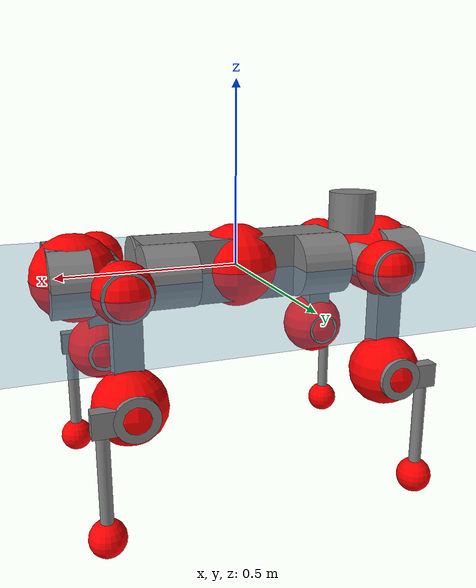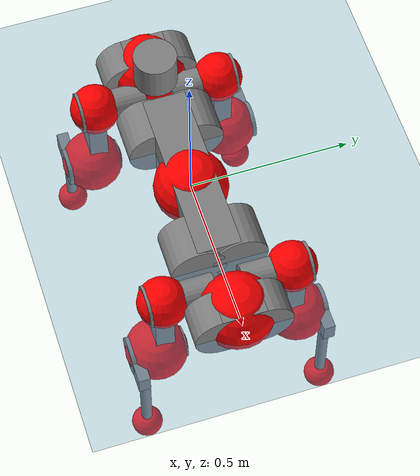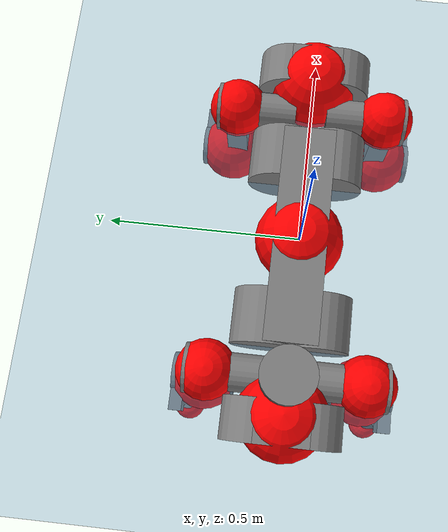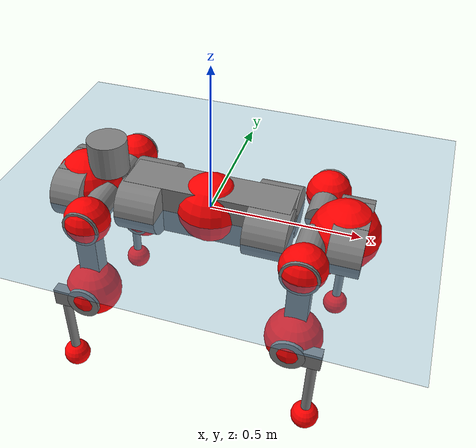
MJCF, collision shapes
<mujoco model="anymal_c">
  <compiler angle="radian" assetdir="assets" balanceinertia="true" inertiafromgeom="false"/>

  <option timestep="0.005" density="1.2" viscosity="2e-05"/>

  <size nkey="1"/>

  <visual>
    <quality shadowsize="8192"/>
    <map shadowclip="0.5"/>
  </visual>

  <default>
    <default class="/">
      <material specular="0" shininess="0.25"/>
      <geom contype="0" conaffinity="0" group="1" solref="-1000 -80"/>
      <site size="0.01 0.005 0.005" group="5"/>
      <general forcelimited="true" forcerange="-80 80" biastype="affine" gainprm="80" biasprm="0 -80 -2"/>
      <default class="anymal_c">
        <joint armature="0.01" damping="0.01" frictionloss="0.1"/>
        <default class="visual">
          <geom type="mesh" group="2"/>
          <default class="visual_zflip"/>
        </default>
        <default class="collision">
          <geom type="cylinder" group="3"/>
          <default class="foot">
            <geom size="0.03 0 0" type="sphere" condim="6" priority="1" friction="0.8 0.02 0.01" solimp="0.015 1 0.03"/>
          </default>
        </default>
      </default>
      <default class="reward_collision_sphere">
        <geom group="5" rgba="1 0 0 1"/>
      </default>
    </default>
  </default>

  <asset>
    <texture type="skybox" colorspace="auto" name="//unnamed_texture_0" builtin="gradient" rgb1="0.95 0.95 0.95" rgb2="0.95 0.95 0.95" width="100" height="600"/>
    <texture type="2d" colorspace="auto" name="texplane" builtin="checker" rgb1="0.345 0.575 0.748" rgb2="0.345 0.575 0.748" markrgb="1 1 1" width="512" height="512"/>
    <texture type="2d" colorspace="linear" name="base" file="base.png"/>
    <texture type="2d" colorspace="linear" name="top_shell" file="top_shell.png"/>
    <texture type="2d" colorspace="linear" name="bottom_shell" file="bottom_shell.png"/>
    <texture type="2d" colorspace="linear" name="remote" file="remote.png"/>
    <texture type="2d" colorspace="linear" name="hatch" file="hatch.png"/>
    <texture type="2d" colorspace="linear" name="handle" file="handle.png"/>
    <texture type="2d" colorspace="linear" name="face" file="face.png"/>
    <texture type="2d" colorspace="linear" name="battery" file="battery.png"/>
    <texture type="2d" colorspace="linear" name="lidar_cage" file="lidar_cage.png"/>
    <texture type="2d" colorspace="linear" name="depth_camera" file="depth_camera.png"/>
    <texture type="2d" colorspace="linear" name="wide_angle_camera" file="wide_angle_camera.png"/>
    <texture type="2d" colorspace="linear" name="lidar" file="lidar.png"/>
    <texture type="2d" colorspace="linear" name="drive" file="drive.png"/>
    <texture type="2d" colorspace="linear" name="hip_l" file="hip_l.png"/>
    <texture type="2d" colorspace="linear" name="shank_l" file="shank_l.png"/>
    <texture type="2d" colorspace="linear" name="foot" file="foot.png"/>
    <texture type="2d" colorspace="linear" name="thigh" file="thigh.png"/>
    <texture type="2d" colorspace="linear" name="shank_r" file="shank_r.png"/>
    <texture type="2d" colorspace="linear" name="hip_r" file="hip_r.png"/>
    <material name="MatPlane" class="/" texture="texplane" texuniform="true" texrepeat="2 2" specular="0.9" shininess="0.5"/>
    <material name="black_plastic" class="/" rgba="0.007 0.007 0.007 1"/>
    <material name="green" class="/" rgba="0.052 0.178 0.033 1"/>
    <material name="red" class="/" rgba="0.178 0.006 0.005 1"/>
    <material name="yellow" class="/" rgba="0.178 0.119 0.006 1"/>
    <material name="lwl" class="/" rgba="0.8 0.8 0.8 1"/>
    <material name="base" class="/" texture="base"/>
    <material name="top_shell" class="/" texture="top_shell"/>
    <material name="bottom_shell" class="/" texture="bottom_shell"/>
    <material name="hip_l" class="/" texture="hip_l"/>
    <material name="thigh" class="/" texture="thigh"/>
    <material name="shank_l" class="/" texture="shank_l"/>
    <material name="foot" class="/" texture="foot"/>
    <material name="hip_r" class="/" texture="hip_r"/>
    <material name="shank" class="/" texture="shank_r"/>
    <material name="hatch" class="/" texture="hatch"/>
    <material name="remote" class="/" texture="remote"/>
    <material name="handle" class="/" texture="handle"/>
    <material name="face" class="/" texture="face"/>
    <material name="depth_camera" class="/" texture="depth_camera"/>
    <material name="wide_angle_camera" class="/" texture="wide_angle_camera"/>
    <material name="battery" class="/" texture="battery"/>
    <material name="lidar_cage" class="/" texture="lidar_cage"/>
    <material name="lidar" class="/" texture="lidar"/>
    <material name="drive" class="/" texture="drive"/>
    <mesh name="base_0" class="/" file="base_0.obj"/>
    <mesh name="base_1" class="/" file="base_1.obj"/>
    <mesh name="base_2" class="/" file="base_2.obj"/>
    <mesh name="base_3" class="/" file="base_3.obj"/>
    <mesh name="base_4" class="/" file="base_4.obj"/>
    <mesh name="base_5" class="/" file="base_5.obj"/>
    <mesh name="top_shell" class="/" file="top_shell.obj"/>
    <mesh name="bottom_shell" class="/" file="bottom_shell.obj"/>
    <mesh name="remote" class="/" file="remote.obj"/>
    <mesh name="handle" class="/" file="handle.obj"/>
    <mesh name="face" class="/" file="face.obj"/>
    <mesh name="wide_angle_camera" class="/" file="wide_angle_camera.obj"/>
    <mesh name="depth_camera" class="/" file="depth_camera.obj"/>
    <mesh name="battery" class="/" file="battery.obj"/>
    <mesh name="lidar_cage" class="/" file="lidar_cage.obj"/>
    <mesh name="lidar" class="/" file="lidar.obj"/>
    <mesh name="drive" class="/" file="drive.obj"/>
    <mesh name="hip_l" class="/" file="hip_l.obj"/>
    <mesh name="thigh" class="/" file="thigh.obj"/>
    <mesh name="shank_l" class="/" file="shank_l.obj"/>
    <mesh name="foot" class="/" file="foot.obj"/>
    <mesh name="hip_r" class="/" file="hip_r.obj"/>
    <mesh name="hatch" class="/" file="hatch.obj"/>
    <mesh name="shank_r" class="/" file="shank_r.obj"/>
  </asset>

  <worldbody>
    <geom name="floor" class="/" size="100 100 0.125" type="plane" group="0" material="MatPlane"/>
    <light name="toplight_shadow" class="/" pos="0 0 5" dir="0.0990148 0.0990148 -0.990148" type="directional" ambient="0.04 0.04 0.04" diffuse="0.55 0.55 0.55" specular="0.12 0.12 0.12"/>
    <light name="toplight_fill" class="/" pos="0 0 5" dir="0.0990148 0.0990148 -0.990148" type="directional" castshadow="false" ambient="0.04 0.04 0.04" diffuse="0.3 0.3 0.3" specular="0.08 0.08 0.08"/>
    <body name="trunk" childclass="anymal_c" pos="0.000125226 0.000728394 -0.000301353" quat="1 -8.88695e-06 3.903e-06 -1.56649e-05">
      <inertial pos="0.00279137 0.000449696 0.0479854" quat="0.502856 0.49778 0.500628 0.498721" mass="17.5473" diaginertia="0.63102 0.409571 0.203918"/>
      <joint name="//unnamed_joint_0" type="free" armature="0" damping="0" frictionloss="0"/>
      <geom name="//unnamed_geom_1" class="visual" material="green" mesh="base_0"/>
      <geom name="//unnamed_geom_2" class="visual" material="yellow" mesh="base_1"/>
      <geom name="//unnamed_geom_3" class="visual" material="red" mesh="base_2"/>
      <geom name="//unnamed_geom_4" class="visual" material="black_plastic" mesh="base_3"/>
      <geom name="//unnamed_geom_5" class="visual" material="lwl" mesh="base_4"/>
      <geom name="//unnamed_geom_6" class="visual" material="base" mesh="base_5"/>
      <geom name="trunk_1" class="collision" size="0.280459 0.0676971 0.0870391" type="box"/>
      <geom name="trunk_2" class="collision" size="0.0870391 0.0701149" pos="0.216535 0.0643062 0" quat="0.707107 0 0.707107 0"/>
      <geom name="trunk_3" class="collision" size="0.0870391 0.0701149" pos="-0.216535 0.0643062 0" quat="0.707107 0 0.707107 0"/>
      <geom name="trunk_4" class="collision" size="0.0870391 0.0701149" pos="0.216535 -0.0643062 0" quat="0.707107 0 0.707107 0"/>
      <geom name="trunk_5" class="collision" size="0.0870391 0.0701149" pos="-0.216535 -0.0643062 0" quat="0.707107 0 0.707107 0"/>
      <geom name="//unnamed_geom_12" class="visual" material="top_shell" mesh="top_shell"/>
      <geom name="//unnamed_geom_13" class="visual" material="bottom_shell" mesh="bottom_shell"/>
      <geom name="//unnamed_geom_14" class="visual" material="remote" mesh="remote"/>
      <geom name="//unnamed_geom_15" class="visual" material="handle" mesh="handle"/>
      <geom name="//unnamed_geom_16" class="visual" pos="0.412661 0 0" quat="1 0 0 0" material="face" mesh="face"/>
      <geom name="trunk_6" class="collision" size="0.0531906 0.0676971 0.0870391" pos="0.467417 0 0" type="box"/>
      <geom name="//unnamed_geom_18" class="collision" size="0.0870391 0.0531906" pos="0.467417 0.0643062 0" quat="0.707107 0 0.707107 0"/>
      <geom name="//unnamed_geom_19" class="collision" size="0.0870391 0.0531906" pos="0.467417 -0.0643062 0" quat="0.707107 0 0.707107 0"/>
      <geom name="//unnamed_geom_20" class="visual" pos="0.459601 0 -0.0287584" quat="0.965926 0 0.258819 0" material="depth_camera" mesh="depth_camera"/>
      <geom name="//unnamed_geom_21" class="visual" pos="0.510723 0 0.0147766" material="wide_angle_camera" mesh="wide_angle_camera"/>
      <geom name="//unnamed_geom_22" class="visual_zflip" pos="-0.412661 0 0" quat="0 0 0 1" material="face" mesh="face"/>
      <geom name="trunk_7" class="collision" size="0.0531906 0.0676971 0.0870391" pos="-0.467417 0 0" quat="0 0 0 1" type="box"/>
      <geom name="//unnamed_geom_24" class="collision" size="0.0870391 0.0531906" pos="-0.467417 -0.0643062 0" quat="0 -0.707107 0 0.707107"/>
      <geom name="//unnamed_geom_25" class="collision" size="0.0870391 0.0531906" pos="-0.467417 0.0643062 0" quat="0 -0.707107 0 0.707107"/>
      <geom name="//unnamed_geom_26" class="visual" pos="-0.459601 0 -0.0287584" quat="0 -0.258819 0 0.965926" material="depth_camera" mesh="depth_camera"/>
      <geom name="//unnamed_geom_27" class="visual_zflip" pos="-0.510723 0 0.0147766" quat="0 0 0 1" material="wide_angle_camera" mesh="wide_angle_camera"/>
      <geom name="//unnamed_geom_28" class="visual" material="battery" mesh="battery"/>
      <geom name="//unnamed_geom_29" class="visual" pos="0 0.0692312 0.0287392" quat="0.683013 -0.183013 0.183013 0.683013" material="depth_camera" mesh="depth_camera"/>
      <geom name="//unnamed_geom_30" class="visual" pos="0 -0.0692312 0.0287392" quat="0.683013 0.183013 0.183013 -0.683013" material="depth_camera" mesh="depth_camera"/>
      <geom name="//unnamed_geom_31" class="visual" pos="-0.362385 0 0.0725506" quat="1 0 0 0" material="lidar_cage" mesh="lidar_cage"/>
      <geom name="trunk_8" class="collision" size="0.0676971 0.0580261" pos="-0.362385 0 0.131776"/>
      <geom name="//unnamed_geom_33" class="visual" pos="-0.362385 -3.0213e-05 0.140363" quat="0.707107 0 0 -0.707107" material="lidar" mesh="lidar"/>
      <geom name="//unnamed_geom_34" class="visual" pos="0.298569 0.0955649 -1.18031e-09" quat="0.258819 0.965926 0 0" material="drive" mesh="drive"/>
      <geom name="//unnamed_geom_35" class="visual" pos="0.298569 -0.0955649 1.18031e-09" quat="0.258819 -0.965926 0 0" material="drive" mesh="drive"/>
      <geom name="//unnamed_geom_36" class="visual" pos="-0.298569 0.0955649 1.18031e-09" quat="0 0 0.965926 -0.258819" material="drive" mesh="drive"/>
      <geom name="//unnamed_geom_37" class="visual" pos="-0.298569 -0.0955649 -1.18031e-09" quat="0 0 -0.965926 -0.258819" material="drive" mesh="drive"/>
      <geom name="//unnamed_geom_38" class="visual" pos="0.115485 0 0.072057" quat="1 0 0 0" material="hatch" mesh="hatch"/>
      <geom name="//unnamed_geom_39" class="reward_collision_sphere" size="0.116052"/>
      <geom name="//unnamed_geom_40" class="reward_collision_sphere" size="0.116052" pos="0.448003 0 0"/>
      <geom name="//unnamed_geom_41" class="reward_collision_sphere" size="0.116052" pos="-0.448003 0 0"/>
      <site name="imu" pos="0.243756 0.0038275 0.0493399" size="0.00967102"/>
      <camera name="track" pos="0 -1.83732 0" quat="0.707107 0.707107 0 0" mode="trackcom"/>
      <camera name="ego_camera" pos="0.448003 0 -0.0394833" quat="-0.5 -0.5 0.5 0.5"/>
      <body name="LF_HIP" pos="0.298056 0.0965021 -0.000379426" quat="0.258573 0.965992 4.37778e-06 -3.33385e-05">
        <inertial pos="0.0564595 -0.013792 -0.00851724" quat="-0.128183 0.708927 -0.135242 0.680221" mass="2.53251" diaginertia="0.00572541 0.00325945 0.00309621"/>
        <joint name="LF_HAA" pos="0 0 0" axis="0.999999 -0.00143925 0.000899429" range="-0.703819 0.479038" armature="0.00979225" damping="0.0112943" frictionloss="0.0924227"/>
        <geom name="//unnamed_geom_42" class="visual" pos="0 -6.9432e-05 1.14042e-05" quat="0.258819 -0.965926 0 0" material="hip_l" mesh="hip_l"/>
        <geom name="//unnamed_geom_43" class="visual" pos="0.0596342 -0.0712713 -0.0416546" quat="0.183013 -0.683013 0.683013 0.183013" material="drive" mesh="drive"/>
        <geom name="//unnamed_geom_44" class="collision" size="0.0483551 0.0676971" pos="0.0596342 -0.010987 -0.00681581" quat="-0.353553 -0.612372 0.612372 -0.353553"/>
        <body name="LF_THIGH" pos="0.0599817 -0.0665445 -0.0412409" quat="0.182884 -0.683214 0.68297 0.182551">
          <inertial pos="0.0300422 -0.000724293 -0.242311" quat="0.993001 -0.00631027 -0.0818232 0.0849349" mass="2.77681" diaginertia="0.0294626 0.0195271 0.0039008"/>
          <joint name="LF_HFE" pos="0 0 0" axis="0.999999 0.000786334 0.000704601" stiffness="0.00451017" range="-3.15016 3.13813" armature="0.00938633" damping="0.0118748" frictionloss="0.0969037"/>
          <geom name="//unnamed_geom_45" class="visual" pos="0.00153006 2.41102e-06 0" quat="0.707107 0 0 -0.707107" material="thigh" mesh="thigh"/>
          <geom name="//unnamed_geom_46" class="collision" size="0.0628616 0.0386841" pos="0.0398225 0 0" quat="0.5 0.5 -0.5 -0.5"/>
          <geom name="//unnamed_geom_47" class="collision" size="0.0362663 0.029013 0.136665" pos="0.0298669 0 -0.139489" quat="0.707107 0 0 -0.707107" type="box"/>
          <geom name="//unnamed_geom_48" class="visual" pos="0.0998549 0 -0.281319" quat="1 0 0 0" material="drive" mesh="drive"/>
          <geom name="//unnamed_geom_49" class="collision" size="0.0483551 0.0676971" pos="0.0301655 0 -0.281319" quat="0.707107 0 0.707107 0"/>
          <geom name="//unnamed_geom_50" class="reward_collision_sphere" size="0.0773681" pos="0.0248891 0 0"/>
          <body name="LF_SHANK" pos="0.0994889 -0.000510337 -0.281347" quat="1 -0.00014418 -2.05727e-05 -0.000284172">
            <inertial pos="0.00452677 -0.0562561 -0.0801009" quat="0.992931 -0.116025 -0.00121952 -0.0249876" mass="0.532051" diaginertia="0.010017 0.00604763 0.00104289"/>
            <joint name="LF_KFE" pos="0 0 0" axis="1 0.000370543 0.000562302" stiffness="0.000342961" range="-3.14829 3.13818" armature="0.0101093" damping="0.0100692" frictionloss="0.0962507"/>
            <geom name="//unnamed_geom_51" class="visual" pos="0.000498919 0.00266026 0" quat="0.707107 0 0 -0.707107" material="shank_l" mesh="shank_l"/>
            <geom name="LF_kfe_act" class="collision" size="0.0580261 0.019342" pos="0.0199112 0 0" quat="0.5 0.5 -0.5 -0.5"/>
            <geom name="//unnamed_geom_53" class="collision" size="0.0556074 0.0326397 0.0183749" pos="0.0199112 -0.052822 0" quat="0.5 0.5 -0.5 -0.5" type="box"/>
            <geom name="//unnamed_geom_54" class="visual" pos="0.012992 -0.0799388 -0.333604" quat="0.382683 0 0 -0.92388" material="foot" mesh="foot"/>
            <geom name="LF_calf" class="collision" size="0.0169243 0.136605" pos="0.0129921 -0.0807961 -0.166802" quat="0.707107 0 0 -0.707107"/>
            <geom name="LF_foot" class="foot" size="0.0297441" pos="0.0129921 -0.0807961 -0.311395" quat="0.707107 0 0 -0.707107"/>
            <geom name="//unnamed_geom_57" class="reward_collision_sphere" size="0.0967102" pos="-0.0497781 0 0"/>
            <geom name="//unnamed_geom_58" class="reward_collision_sphere" size="0.0483551" pos="0.0129921 -0.0807961 -0.311395"/>
            <site name="LF_foot" class="foot" pos="0.0129921 -0.0807961 -0.311395" quat="0.707107 0 0 -0.707107" size="0.00967102"/>
          </body>
        </body>
      </body>
      <body name="RF_HIP" pos="0.298952 -0.0953986 0.00109564" quat="0.258828 -0.965923 -4.73406e-05 6.93353e-06">
        <inertial pos="0.0563767 0.0149537 -0.00777245" quat="0.135009 0.679505 0.128627 0.709578" mass="2.51532" diaginertia="0.00568277 0.00317596 0.00304649"/>
        <joint name="RF_HAA" pos="0 0 0" axis="0.999996 -0.00232006 -0.001595" range="-0.49366 0.718221" armature="0.00987395" damping="0.0115625" frictionloss="0.0975178"/>
        <geom name="//unnamed_geom_59" class="visual" pos="0 6.94315e-05 1.14041e-05" quat="0.258819 0.965926 0 0" material="hip_r" mesh="hip_r"/>
        <geom name="//unnamed_geom_60" class="visual" pos="0.0596342 0.0712713 -0.0416546" quat="0.183013 0.683013 0.683013 -0.183013" material="drive" mesh="drive"/>
        <geom name="//unnamed_geom_61" class="collision" size="0.0483551 0.0676971" pos="0.0596342 0.010987 -0.00681581" quat="-0.353553 0.612372 0.612372 0.353553"/>
        <body name="RF_THIGH" pos="0.0600522 0.0675006 -0.0428846" quat="0.183305 0.682988 0.683007 -0.182834">
          <inertial pos="0.0312504 -0.000649288 -0.242145" quat="0.99321 -0.00446905 -0.0768363 0.087233" mass="2.72911" diaginertia="0.0292741 0.0194218 0.00389548"/>
          <joint name="RF_HFE" pos="0 0 0" axis="0.999996 -0.0027182 -0.000367787" stiffness="0.00627925" range="-3.14483 3.13963" armature="0.00956227" damping="0.0121831" frictionloss="0.0965979"/>
          <geom name="//unnamed_geom_62" class="visual" pos="0.00153006 2.41102e-06 0" quat="0.707107 0 0 -0.707107" material="thigh" mesh="thigh"/>
          <geom name="//unnamed_geom_63" class="collision" size="0.0628616 0.0386841" pos="0.0398225 0 0" quat="0.5 0.5 0.5 0.5"/>
          <geom name="//unnamed_geom_64" class="collision" size="0.0362663 0.029013 0.136665" pos="0.0298669 0 -0.139489" quat="0.707107 0 0 0.707107" type="box"/>
          <geom name="//unnamed_geom_65" class="visual" pos="0.0998549 0 -0.281319" quat="1 0 0 0" material="drive" mesh="drive"/>
          <geom name="//unnamed_geom_66" class="collision" size="0.0483551 0.0676971" pos="0.0301655 0 -0.281319" quat="0.707107 0 0.707107 0"/>
          <geom name="//unnamed_geom_67" class="reward_collision_sphere" size="0.0773681" pos="0.0248891 0 0"/>
          <body name="RF_SHANK" pos="0.0994985 0.000139108 -0.280222" quat="1 6.5046e-05 -1.9071e-05 -0.000164197">
            <inertial pos="0.00551855 0.0562899 -0.0803316" quat="0.993255 0.112587 -0.00259639 0.0276148" mass="0.529865" diaginertia="0.00999192 0.00604744 0.00105228"/>
            <joint name="RF_KFE" pos="0 0 0" axis="0.999989 -0.0046398 0.000424275" range="-3.12643 3.13401" armature="0.00970594" damping="0.00791881" frictionloss="0.0987469"/>
            <geom name="//unnamed_geom_68" class="visual" pos="0.000498916 -0.00266026 0" quat="0.707107 0 0 0.707107" material="shank" mesh="shank_r"/>
            <geom name="RF_kfe_act" class="collision" size="0.0580261 0.019342" pos="0.0199112 0 0" quat="0.5 0.5 0.5 0.5"/>
            <geom name="//unnamed_geom_70" class="collision" size="0.0556074 0.0326397 0.0183749" pos="0.0199112 0.052822 0" quat="0.5 0.5 0.5 0.5" type="box"/>
            <geom name="//unnamed_geom_71" class="visual" pos="0.0129922 0.0799388 -0.333604" quat="0.382683 0 0 0.92388" material="foot" mesh="foot"/>
            <geom name="RF_calf" class="collision" size="0.0169243 0.136605" pos="0.0129921 0.0807961 -0.166802" quat="0.707107 0 0 0.707107"/>
            <geom name="RF_foot" class="foot" size="0.0303647" pos="0.0129921 0.0807961 -0.311395" quat="0.707107 0 0 0.707107"/>
            <geom name="//unnamed_geom_74" class="reward_collision_sphere" size="0.0967102" pos="-0.0497781 0 0"/>
            <geom name="//unnamed_geom_75" class="reward_collision_sphere" size="0.0483551" pos="0.0129921 0.0807961 -0.311395"/>
            <site name="RF_foot" class="foot" pos="0.0129921 0.0807961 -0.311395" quat="0.707107 0 0 0.707107" size="0.00967102"/>
          </body>
        </body>
      </body>
      <body name="LH_HIP" pos="-0.297629 0.0961641 5.73219e-05" quat="-1.43836e-05 2.16719e-05 0.965926 -0.258817">
        <inertial pos="0.0565096 0.0143712 -0.00891565" quat="0.13607 0.680062 0.126634 0.7092" mass="2.5217" diaginertia="0.00572127 0.00321271 0.0030813"/>
        <joint name="LH_HAA" pos="0 0 0" axis="1 -0.000593114 0.00077828" range="-0.485379 0.724092" armature="0.00965451" damping="0.00717493" frictionloss="0.0985636"/>
        <geom name="//unnamed_geom_76" class="visual" pos="0 6.94315e-05 1.14041e-05" quat="-0.258819 -0.965926 0 0" material="hip_r" mesh="hip_r"/>
        <geom name="//unnamed_geom_77" class="visual" pos="0.0596342 0.0712713 -0.0416546" quat="0.183013 0.683013 0.683013 -0.183013" material="drive" mesh="drive"/>
        <geom name="//unnamed_geom_78" class="collision" size="0.0483551 0.0676971" pos="0.0596342 0.010987 -0.00681581" quat="-0.353553 0.612372 0.612372 0.353553"/>
        <body name="LH_THIGH" pos="0.0599534 0.0669056 -0.0426029" quat="0.183333 0.68281 0.683123 -0.183035">
          <inertial pos="0.0306111 6.46301e-05 -0.242534" quat="0.992568 -0.00736206 -0.0838383 0.0878972" mass="2.80263" diaginertia="0.029426 0.0195201 0.00393803"/>
          <joint name="LH_HFE" pos="0 0 0" axis="0.999996 0.00241698 0.001742" range="-3.12836 3.12274" armature="0.00967891" damping="0.00967555" frictionloss="0.0981337"/>
          <geom name="//unnamed_geom_79" class="visual" pos="0.00153006 2.41102e-06 0" quat="0.707107 0 0 -0.707107" material="thigh" mesh="thigh"/>
          <geom name="//unnamed_geom_80" class="collision" size="0.0628616 0.0386841" pos="0.0398225 0 0" quat="0.5 0.5 -0.5 -0.5"/>
          <geom name="//unnamed_geom_81" class="collision" size="0.0362663 0.029013 0.136665" pos="0.0298669 0 -0.139489" quat="0.707107 0 0 -0.707107" type="box"/>
          <geom name="//unnamed_geom_82" class="visual" pos="0.0998549 0 -0.281319" quat="1 0 0 0" material="drive" mesh="drive"/>
          <geom name="//unnamed_geom_83" class="collision" size="0.0483551 0.0676971" pos="0.0301655 0 -0.281319" quat="0.707107 0 0.707107 0"/>
          <geom name="//unnamed_geom_84" class="reward_collision_sphere" size="0.0773681" pos="0.0248891 0 0"/>
          <body name="LH_SHANK" pos="0.100904 -0.00170531 -0.28169" quat="1 -0.000165856 -0.000158001 0.000239572">
            <inertial pos="0.00575767 0.0562505 -0.0797721" quat="0.992981 0.115573 -0.00143881 0.0250957" mass="0.521067" diaginertia="0.00979469 0.0059937 0.00103793"/>
            <joint name="LH_KFE" pos="0 0 0" axis="0.999998 0.00188161 0.000324104" range="-3.13598 3.15532" armature="0.00974037" damping="0.011884" frictionloss="0.0958676"/>
            <geom name="//unnamed_geom_85" class="visual" pos="0.000498916 -0.00266026 0" quat="-0.707107 0 0 -0.707107" material="shank" mesh="shank_r"/>
            <geom name="LH_kfe_act" class="collision" size="0.0580261 0.019342" pos="0.0199112 0 0" quat="0.5 0.5 -0.5 -0.5"/>
            <geom name="//unnamed_geom_87" class="collision" size="0.0556074 0.0326397 0.0183749" pos="0.0199112 0.052822 0" quat="0.5 0.5 -0.5 -0.5" type="box"/>
            <geom name="//unnamed_geom_88" class="visual" pos="0.0129922 0.0799388 -0.333604" quat="-0.382683 0 0 -0.92388" material="foot" mesh="foot"/>
            <geom name="LH_calf" class="collision" size="0.0169243 0.136605" pos="0.0129921 0.0807961 -0.166802" quat="0.707107 0 0 -0.707107"/>
            <geom name="LH_foot" class="foot" size="0.0300476" pos="0.0129921 0.0807961 -0.311395" quat="0.707107 0 0 -0.707107"/>
            <geom name="//unnamed_geom_91" class="reward_collision_sphere" size="0.0967102" pos="-0.0497781 0 0"/>
            <geom name="//unnamed_geom_92" class="reward_collision_sphere" size="0.0483551" pos="0.0129921 0.0807961 -0.311395"/>
            <site name="LH_foot" class="foot" pos="0.0129921 0.0807961 -0.311395" quat="0.707107 0 0 -0.707107" size="0.00967102"/>
          </body>
        </body>
      </body>
      <body name="RH_HIP" pos="-0.297972 -0.0965433 0.000317327" quat="0.00011726 -0.000338614 -0.965957 -0.258704">
        <inertial pos="0.0568857 -0.0145964 -0.00749183" quat="-0.126842 0.709468 -0.133351 0.680282" mass="2.48976" diaginertia="0.00561698 0.00318831 0.00305358"/>
        <joint name="RH_HAA" pos="0 0 0" axis="0.999996 -0.00234968 0.00156407" stiffness="0.000815549" range="-0.72279 0.493612" armature="0.00967872" damping="0.00919208" frictionloss="0.0955672"/>
        <geom name="//unnamed_geom_93" class="visual" pos="0 -6.9432e-05 1.14042e-05" quat="-0.258819 0.965926 0 0" material="hip_l" mesh="hip_l"/>
        <geom name="//unnamed_geom_94" class="visual" pos="0.0596342 -0.0712713 -0.0416546" quat="-0.183013 0.683013 -0.683013 -0.183013" material="drive" mesh="drive"/>
        <geom name="//unnamed_geom_95" class="collision" size="0.0483551 0.0676971" pos="0.0596342 -0.010987 -0.00681581" quat="0.353553 0.612372 -0.612372 0.353553"/>
        <body name="RH_THIGH" pos="0.0593416 -0.0674646 -0.041909" quat="-0.182975 0.683022 -0.683008 -0.183031">
          <inertial pos="0.0309016 -2.52854e-05 -0.243189" quat="0.993155 -0.00734184 -0.0801314 0.0846677" mass="2.80459" diaginertia="0.0297755 0.0197878 0.00396027"/>
          <joint name="RH_HFE" pos="0 0 0" axis="1 0.000234869 -0.000143895" stiffness="0.00228163" range="-3.13342 3.12614" armature="0.0097653" damping="0.00733608" frictionloss="0.0981537"/>
          <geom name="//unnamed_geom_96" class="visual" pos="0.00153006 2.41102e-06 0" quat="0.707107 0 0 -0.707107" material="thigh" mesh="thigh"/>
          <geom name="//unnamed_geom_97" class="collision" size="0.0628616 0.0386841" pos="0.0398225 0 0" quat="0.5 0.5 0.5 0.5"/>
          <geom name="//unnamed_geom_98" class="collision" size="0.0362663 0.029013 0.136665" pos="0.0298669 0 -0.139489" quat="0.707107 0 0 0.707107" type="box"/>
          <geom name="//unnamed_geom_99" class="visual" pos="0.0998549 0 -0.281319" quat="1 0 0 0" material="drive" mesh="drive"/>
          <geom name="//unnamed_geom_100" class="collision" size="0.0483551 0.0676971" pos="0.0301655 0 -0.281319" quat="0.707107 0 0.707107 0"/>
          <geom name="//unnamed_geom_101" class="reward_collision_sphere" size="0.0773681" pos="0.0248891 0 0"/>
          <body name="RH_SHANK" pos="0.0983815 0.000724819 -0.281185" quat="1 4.39116e-05 -0.000285479 -1.55463e-05">
            <inertial pos="0.00630512 -0.0561095 -0.0800579" quat="0.992935 -0.115907 -0.00105756 -0.025396" mass="0.534294" diaginertia="0.00994114 0.00601996 0.0010552"/>
            <joint name="RH_KFE" pos="0 0 0" axis="0.999989 0.00441979 0.00122524" range="-3.11362 3.13645" armature="0.00970552" damping="0.00778946" frictionloss="0.0968843"/>
            <geom name="//unnamed_geom_102" class="visual" pos="0.000498919 0.00266026 0" quat="0.707107 0 0 -0.707107" material="shank_l" mesh="shank_l"/>
            <geom name="RH_kfe_act" class="collision" size="0.0580261 0.019342" pos="0.0199112 0 0" quat="0.5 0.5 0.5 0.5"/>
            <geom name="//unnamed_geom_104" class="collision" size="0.0556074 0.0326397 0.0183749" pos="0.0199112 -0.052822 0" quat="0.5 0.5 0.5 0.5" type="box"/>
            <geom name="//unnamed_geom_105" class="visual" pos="0.012992 -0.0799388 -0.333604" quat="0.382683 0 0 -0.92388" material="foot" mesh="foot"/>
            <geom name="RH_calf" class="collision" size="0.0169243 0.136605" pos="0.0129921 -0.0807961 -0.166802" quat="0.707107 0 0 0.707107"/>
            <geom name="RH_foot" class="foot" size="0.0282734" pos="0.0129921 -0.0807961 -0.311395" quat="0.707107 0 0 0.707107"/>
            <geom name="//unnamed_geom_108" class="reward_collision_sphere" size="0.0967102" pos="-0.0497781 0 0"/>
            <geom name="//unnamed_geom_109" class="reward_collision_sphere" size="0.0483551" pos="0.0129921 -0.0807961 -0.311395"/>
            <site name="RH_foot" class="foot" pos="0.0129921 -0.0807961 -0.311395" quat="0.707107 0 0 0.707107" size="0.00967102"/>
          </body>
        </body>
      </body>
    </body>
  </worldbody>

  <contact>
    <pair class="/" geom1="floor" geom2="LF_foot" name="//unnamed_contact_0"/>
    <pair class="/" geom1="floor" geom2="RF_foot" name="//unnamed_contact_1"/>
    <pair class="/" geom1="floor" geom2="LH_foot" name="//unnamed_contact_2"/>
    <pair class="/" geom1="floor" geom2="RH_foot" name="//unnamed_contact_3"/>
  </contact>

  <actuator>
    <general name="LF_HAA" class="/" joint="LF_HAA" forcerange="-80.6625 80.6625" gainprm="77.3054" biasprm="0 -77.3054 -1.85513"/>
    <general name="LF_HFE" class="/" joint="LF_HFE" forcerange="-80.0289 80.0289" gainprm="77.3054" biasprm="0 -77.3054 -1.85513"/>
    <general name="LF_KFE" class="/" joint="LF_KFE" forcerange="-76.143 76.143" gainprm="77.3054" biasprm="0 -77.3054 -1.85513"/>
    <general name="RF_HAA" class="/" joint="RF_HAA" forcerange="-78.5221 78.5221" gainprm="77.3054" biasprm="0 -77.3054 -1.85513"/>
    <general name="RF_HFE" class="/" joint="RF_HFE" forcerange="-79.5071 79.5071" gainprm="77.3054" biasprm="0 -77.3054 -1.85513"/>
    <general name="RF_KFE" class="/" joint="RF_KFE" forcerange="-74.9273 74.9273" gainprm="77.3054" biasprm="0 -77.3054 -1.85513"/>
    <general name="LH_HAA" class="/" joint="LH_HAA" forcerange="-77.2936 77.2936" gainprm="77.3054" biasprm="0 -77.3054 -1.85513"/>
    <general name="LH_HFE" class="/" joint="LH_HFE" forcerange="-79.1232 79.1232" gainprm="77.3054" biasprm="0 -77.3054 -1.85513"/>
    <general name="LH_KFE" class="/" joint="LH_KFE" forcerange="-79.451 79.451" gainprm="77.3054" biasprm="0 -77.3054 -1.85513"/>
    <general name="RH_HAA" class="/" joint="RH_HAA" forcerange="-77.1318 77.1318" gainprm="77.3054" biasprm="0 -77.3054 -1.85513"/>
    <general name="RH_HFE" class="/" joint="RH_HFE" forcerange="-77.8838 77.8838" gainprm="77.3054" biasprm="0 -77.3054 -1.85513"/>
    <general name="RH_KFE" class="/" joint="RH_KFE" forcerange="-77.6037 77.6037" gainprm="77.3054" biasprm="0 -77.3054 -1.85513"/>
  </actuator>

  <sensor>
    <gyro site="imu" name="imu_angular_velocity"/>
    <velocimeter site="imu" name="imu_linear_velocity"/>
    <framelinvel objtype="site" objname="LF_foot" name="LF_foot_global_linear_velocity"/>
    <framelinvel objtype="site" objname="RF_foot" name="RF_foot_global_linear_velocity"/>
    <framelinvel objtype="site" objname="LH_foot" name="LH_foot_global_linear_velocity"/>
    <framelinvel objtype="site" objname="RH_foot" name="RH_foot_global_linear_velocity"/>
  </sensor>

  <keyframe>
    <key name="home" qpos="0 0 0.55 1 0 0 0 0 0.4 -0.8 0 -0.4 0.8 0 -0.4 0.8 0 0.4 -0.8"/>
  </keyframe>
</mujoco>
